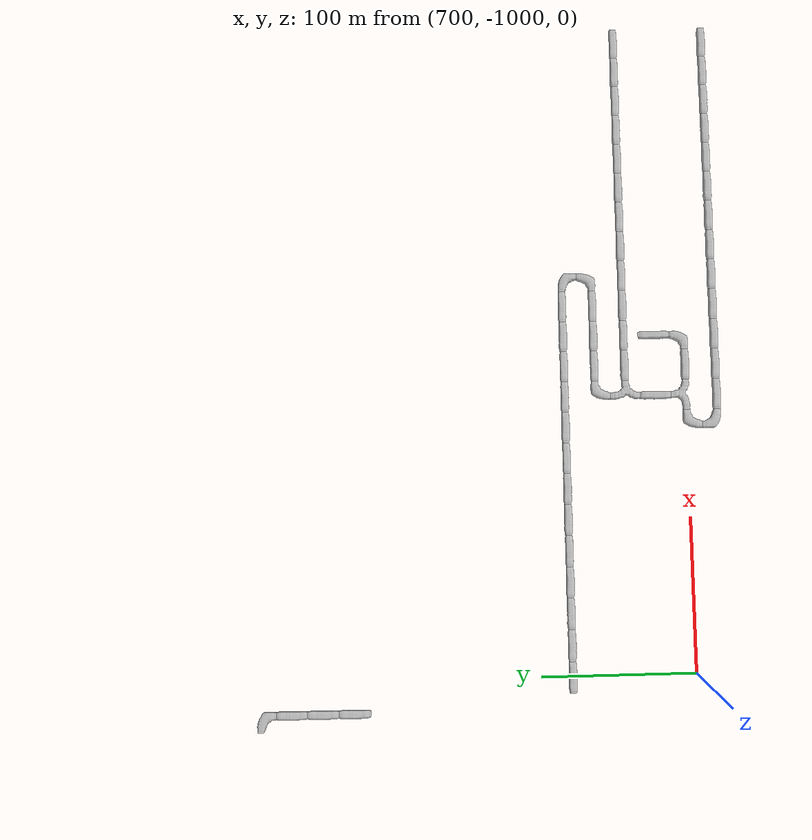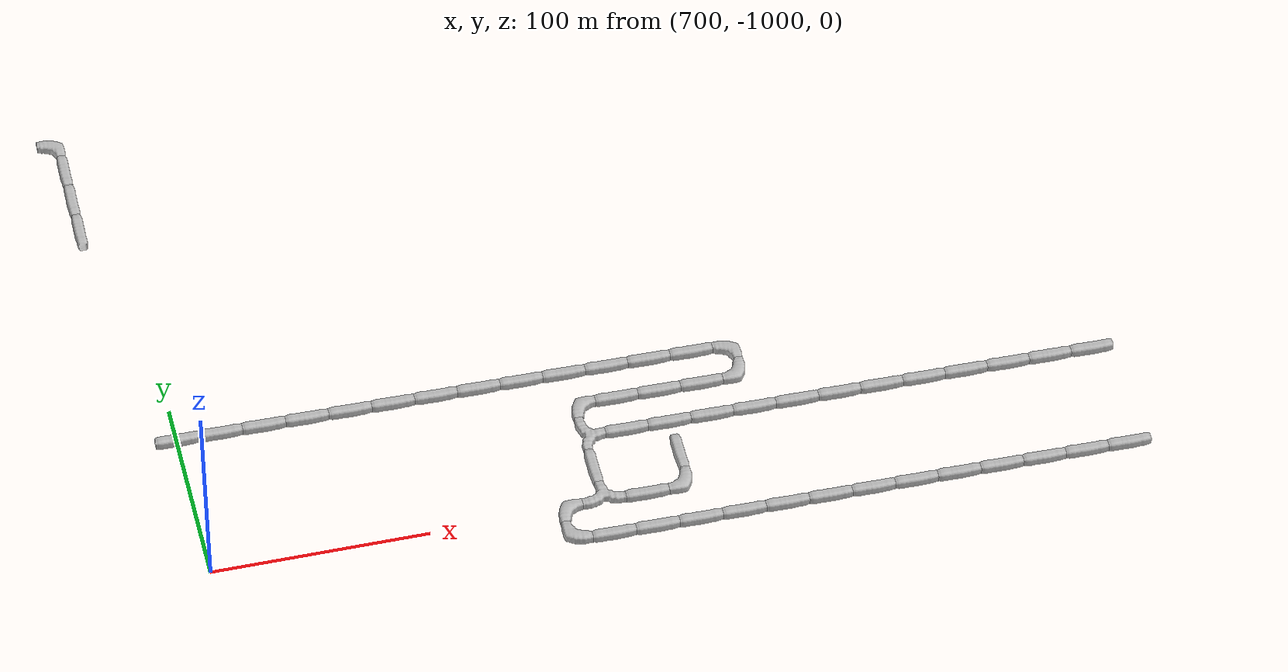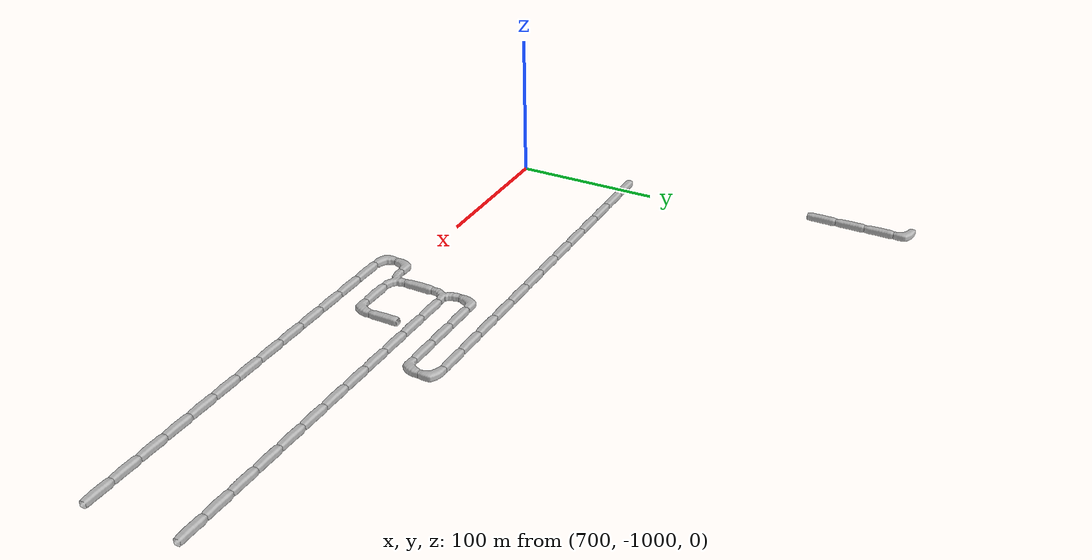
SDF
<sdf version="1.6">
 <world name="cave_32000_0">
  <include>
   <static>true</static>
   <name>cave_35_-46</name>
   <pose>700 -920 0 0 0 1.5707963267948966</pose>
   <uri>model://cave_straight_20m</uri>
  </include>
  <include>
   <static>true</static>
   <name>cave_36_-46</name>
   <pose>720 -920 0 0 0 1.5707963267948966</pose>
   <uri>model://cave_straight_20m</uri>
  </include>
  <include>
   <static>true</static>
   <name>cave_37_-46</name>
   <pose>740 -920 0 0 0 1.5707963267948966</pose>
   <uri>model://cave_straight_20m</uri>
  </include>
  <include>
   <static>true</static>
   <name>cave_38_-46</name>
   <pose>760 -920 0 0 0 1.5707963267948966</pose>
   <uri>model://cave_straight_20m</uri>
  </include>
  <include>
   <static>true</static>
   <name>cave_39_-46</name>
   <pose>780 -920 0 0 0 1.5707963267948966</pose>
   <uri>model://cave_straight_20m</uri>
  </include>
  <include>
   <static>true</static>
   <name>cave_40_-46</name>
   <pose>800 -920 0 0 0 1.5707963267948966</pose>
   <uri>model://cave_straight_20m</uri>
  </include>
  <include>
   <static>true</static>
   <name>cave_41_-46</name>
   <pose>820 -920 0 0 0 1.5707963267948966</pose>
   <uri>model://cave_straight_20m</uri>
  </include>
  <include>
   <static>true</static>
   <name>cave_42_-46</name>
   <pose>840 -920 0 0 0 1.5707963267948966</pose>
   <uri>model://cave_straight_20m</uri>
  </include>
  <include>
   <static>true</static>
   <name>cave_43_-46</name>
   <pose>860 -920 0 0 0 1.5707963267948966</pose>
   <uri>model://cave_straight_20m</uri>
  </include>
  <include>
   <static>true</static>
   <name>cave_44_-46</name>
   <pose>880 -920 0 0 0 1.5707963267948966</pose>
   <uri>model://cave_straight_20m</uri>
  </include>
  <include>
   <static>true</static>
   <name>cave_45_-46</name>
   <pose>900 -920 0 0 0 1.5707963267948966</pose>
   <uri>model://cave_straight_20m</uri>
  </include>
  <include>
   <static>true</static>
   <name>cave_46_-46</name>
   <pose>920 -920 0 0 0 1.5707963267948966</pose>
   <uri>model://cave_straight_20m</uri>
  </include>
  <include>
   <static>true</static>
   <name>cave_47_-46</name>
   <pose>940 -920 0 0 0 1.5707963267948966</pose>
   <uri>model://cave_straight_20m</uri>
  </include>
  <include>
   <static>true</static>
   <name>cave_48_-46</name>
   <pose>960 -920 0 0 0 3.141592653589793</pose>
   <uri>model://cave_L_20m</uri>
  </include>
  <include>
   <static>true</static>
   <name>cave_48_-47</name>
   <pose>960 -940 0 0 0 1.5707963267948966</pose>
   <uri>model://cave_L_20m</uri>
  </include>
  <include>
   <static>true</static>
   <name>cave_47_-47</name>
   <pose>940 -940 0 0 0 1.5707963267948966</pose>
   <uri>model://cave_straight_20m</uri>
  </include>
  <include>
   <static>true</static>
   <name>cave_46_-47</name>
   <pose>920 -940 0 0 0 1.5707963267948966</pose>
   <uri>model://cave_straight_20m</uri>
  </include>
  <include>
   <static>true</static>
   <name>cave_45_-47</name>
   <pose>900 -940 0 0 0 1.5707963267948966</pose>
   <uri>model://cave_straight_20m</uri>
  </include>
  <include>
   <static>true</static>
   <name>cave_44_-47</name>
   <pose>880 -940 0 0 0 -1.5707963267948966</pose>
   <uri>model://cave_L_20m</uri>
  </include>
  <include>
   <static>true</static>
   <name>cave_44_-48</name>
   <pose>880 -960 0 0 0 -1.5707963267948966</pose>
   <uri>model://cave_3way_20m</uri>
  </include>
  <include>
   <static>true</static>
   <name>cave_45_-48</name>
   <pose>900 -960 0 0 0 1.5707963267948966</pose>
   <uri>model://cave_straight_20m</uri>
  </include>
  <include>
   <static>true</static>
   <name>cave_46_-48</name>
   <pose>920 -960 0 0 0 1.5707963267948966</pose>
   <uri>model://cave_straight_20m</uri>
  </include>
  <include>
   <static>true</static>
   <name>cave_47_-48</name>
   <pose>940 -960 0 0 0 1.5707963267948966</pose>
   <uri>model://cave_straight_20m</uri>
  </include>
  <include>
   <static>true</static>
   <name>cave_48_-48</name>
   <pose>960 -960 0 0 0 1.5707963267948966</pose>
   <uri>model://cave_straight_20m</uri>
  </include>
  <include>
   <static>true</static>
   <name>cave_49_-48</name>
   <pose>980 -960 0 0 0 1.5707963267948966</pose>
   <uri>model://cave_straight_20m</uri>
  </include>
  <include>
   <static>true</static>
   <name>cave_50_-48</name>
   <pose>1000 -960 0 0 0 1.5707963267948966</pose>
   <uri>model://cave_straight_20m</uri>
  </include>
  <include>
   <static>true</static>
   <name>cave_51_-48</name>
   <pose>1020 -960 0 0 0 1.5707963267948966</pose>
   <uri>model://cave_straight_20m</uri>
  </include>
  <include>
   <static>true</static>
   <name>cave_52_-48</name>
   <pose>1040 -960 0 0 0 1.5707963267948966</pose>
   <uri>model://cave_straight_20m</uri>
  </include>
  <include>
   <static>true</static>
   <name>cave_53_-48</name>
   <pose>1060 -960 0 0 0 1.5707963267948966</pose>
   <uri>model://cave_straight_20m</uri>
  </include>
  <include>
   <static>true</static>
   <name>cave_54_-48</name>
   <pose>1080 -960 0 0 0 1.5707963267948966</pose>
   <uri>model://cave_straight_20m</uri>
  </include>
  <include>
   <static>true</static>
   <name>cave_55_-48</name>
   <pose>1100 -960 0 0 0 1.5707963267948966</pose>
   <uri>model://cave_straight_20m</uri>
  </include>
  <include>
   <static>true</static>
   <name>cave_56_-48</name>
   <pose>1120 -960 0 0 0 1.5707963267948966</pose>
   <uri>model://cave_straight_20m</uri>
  </include>
  <include>
   <static>true</static>
   <name>cave_44_-49</name>
   <pose>880 -980 0 0 0 0.0</pose>
   <uri>model://cave_straight_20m</uri>
  </include>
  <include>
   <static>true</static>
   <name>cave_44_-50</name>
   <pose>880 -1000 0 0 0 0.0</pose>
   <uri>model://cave_3way_20m</uri>
  </include>
  <include>
   <static>true</static>
   <name>cave_45_-50</name>
   <pose>900 -1000 0 0 0 1.5707963267948966</pose>
   <uri>model://cave_straight_20m</uri>
  </include>
  <include>
   <static>true</static>
   <name>cave_46_-50</name>
   <pose>920 -1000 0 0 0 1.5707963267948966</pose>
   <uri>model://cave_L_20m</uri>
  </include>
  <include>
   <static>true</static>
   <name>cave_46_-49</name>
   <pose>920 -980 0 0 0 0.0</pose>
   <uri>model://cave_straight_20m</uri>
  </include>
  <include>
   <static>true</static>
   <name>cave_43_-50</name>
   <pose>860 -1000 0 0 0 -1.5707963267948966</pose>
   <uri>model://cave_L_20m</uri>
  </include>
  <include>
   <static>true</static>
   <name>cave_43_-51</name>
   <pose>860 -1020 0 0 0 0.0</pose>
   <uri>model://cave_L_20m</uri>
  </include>
  <include>
   <static>true</static>
   <name>cave_44_-51</name>
   <pose>880 -1020 0 0 0 1.5707963267948966</pose>
   <uri>model://cave_straight_20m</uri>
  </include>
  <include>
   <static>true</static>
   <name>cave_45_-51</name>
   <pose>900 -1020 0 0 0 1.5707963267948966</pose>
   <uri>model://cave_straight_20m</uri>
  </include>
  <include>
   <static>true</static>
   <name>cave_46_-51</name>
   <pose>920 -1020 0 0 0 1.5707963267948966</pose>
   <uri>model://cave_straight_20m</uri>
  </include>
  <include>
   <static>true</static>
   <name>cave_47_-51</name>
   <pose>940 -1020 0 0 0 1.5707963267948966</pose>
   <uri>model://cave_straight_20m</uri>
  </include>
  <include>
   <static>true</static>
   <name>cave_48_-51</name>
   <pose>960 -1020 0 0 0 1.5707963267948966</pose>
   <uri>model://cave_straight_20m</uri>
  </include>
  <include>
   <static>true</static>
   <name>cave_49_-51</name>
   <pose>980 -1020 0 0 0 1.5707963267948966</pose>
   <uri>model://cave_straight_20m</uri>
  </include>
  <include>
   <static>true</static>
   <name>cave_50_-51</name>
   <pose>1000 -1020 0 0 0 1.5707963267948966</pose>
   <uri>model://cave_straight_20m</uri>
  </include>
  <include>
   <static>true</static>
   <name>cave_51_-51</name>
   <pose>1020 -1020 0 0 0 1.5707963267948966</pose>
   <uri>model://cave_straight_20m</uri>
  </include>
  <include>
   <static>true</static>
   <name>cave_52_-51</name>
   <pose>1040 -1020 0 0 0 1.5707963267948966</pose>
   <uri>model://cave_straight_20m</uri>
  </include>
  <include>
   <static>true</static>
   <name>cave_53_-51</name>
   <pose>1060 -1020 0 0 0 1.5707963267948966</pose>
   <uri>model://cave_straight_20m</uri>
  </include>
  <include>
   <static>true</static>
   <name>cave_54_-51</name>
   <pose>1080 -1020 0 0 0 1.5707963267948966</pose>
   <uri>model://cave_straight_20m</uri>
  </include>
  <include>
   <static>true</static>
   <name>cave_55_-51</name>
   <pose>1100 -1020 0 0 0 1.5707963267948966</pose>
   <uri>model://cave_straight_20m</uri>
  </include>
  <include>
   <static>true</static>
   <name>cave_56_-51</name>
   <pose>1120 -1020 0 0 0 1.5707963267948966</pose>
   <uri>model://cave_straight_20m</uri>
  </include>
  <include>
   <static>true</static>
   <name>cave_34_-39</name>
   <pose>680 -780 0 0 0 0.0</pose>
   <uri>model://cave_straight_20m</uri>
  </include>
  <include>
   <static>true</static>
   <name>cave_34_-38</name>
   <pose>680 -760 0 0 0 0.0</pose>
   <uri>model://cave_straight_20m</uri>
  </include>
  <include>
   <static>true</static>
   <name>cave_34_-37</name>
   <pose>680 -740 0 0 0 0.0</pose>
   <uri>model://cave_straight_20m</uri>
  </include>
  <include>
   <static>true</static>
   <name>cave_34_-36</name>
   <pose>680 -720 0 0 0 3.141592653589793</pose>
   <uri>model://cave_L_20m</uri>
  </include>
 </world>
</sdf>
